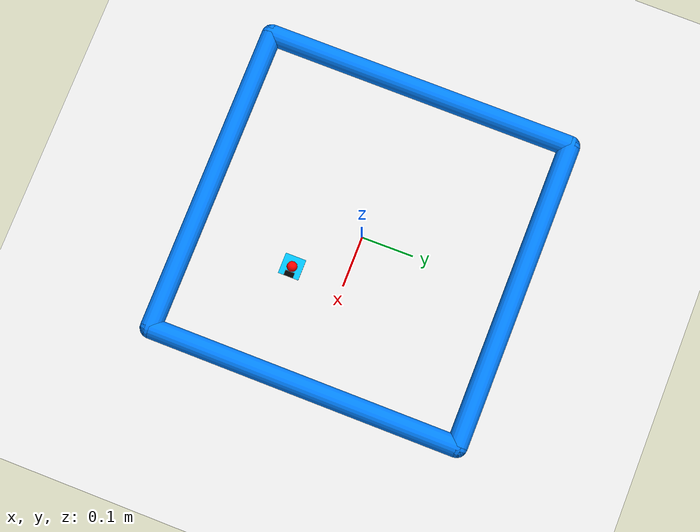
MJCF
<mujoco model="reacher">
	<compiler angle="radian" inertiafromgeom="true"/>
	<default>
		<joint armature="1" damping="1" limited="true"/>
		<geom contype="0" friction="1 0.1 0.1" rgba="0.7 0.7 0 1"/>
	</default>
	<option gravity="0 0 -9.81" integrator="RK4" timestep="0.01"/>
	<worldbody>
		<!-- Arena -->
		<geom conaffinity="0" contype="0" name="ground" pos="0 0 0" rgba="0.9 0.9 0.9 1" size="1 1 10" type="plane"/>
		<geom conaffinity="0" fromto="-.3 -.3 .01 .3 -.3 .01" name="sideS" rgba="0 0.5 1 1" size=".02" type="capsule"/>
		<geom conaffinity="0" fromto=" .3 -.3 .01 .3  .3 .01" name="sideE" rgba="0 0.5 1 1" size=".02" type="capsule"/>
		<geom conaffinity="0" fromto="-.3  .3 .01 .3  .3 .01" name="sideN" rgba="0 0.5 1 1" size=".02" type="capsule"/>
		<geom conaffinity="0" fromto="-.3 -.3 .01 -.3 .3 .01" name="sideW" rgba="0 0.5 1 1" size=".02" type="capsule"/>
		<!-- Agent -->
		<body name="agent" pos=".1 -.1 .01">
			<joint armature="1000" damping="800" axis="1 0 0" limited="true" name="agent_x" pos="0 0 0" range="-.27 .27" ref=".1" type="slide"/>
			<joint armature="1000" damping="800" axis="0 1 0" limited="true" name="agent_y" pos="0 0 0" range="-.27 .27" ref="-.1" type="slide"/>
			<geom conaffinity="0" contype="0" name="agent_body" pos="0 0 0" rgba="0 0.75 1 1" size="0.02 0.02 .0001" type="box"/>
			<joint axis="0 0 1" limited="false" name="viewer" pos="0 0 0" type="hinge"/>
			<body name="agent_eye" pos="0 0 0">
				<geom name="eye" pos="0.015 0 0.0001" rgba="0 0 0 1" size="0.005 0.009 0.0001" type="box"/>
			</body>
		</body>

		<!-- Target -->
		<body name="target" pos=".1 -.1 .01">
			<joint armature="0" damping="0" stiffness="0" axis="1 0 0" limited="true" name="target_x" pos="0 0 0" range="-.27 .27" ref=".1" type="slide"/>
			<joint armature="0" damping="0" stiffness="0" axis="0 1 0" limited="true" name="target_y" pos="0 0 0" range="-.27 .27" ref="-.1" type="slide"/>
			<geom conaffinity="0" contype="0" name="target_body" pos="0 0 0" rgba="1 0 0 1" size=".01" type="sphere"/>
		</body>
	</worldbody>
	<actuator>
		<motor ctrllimited="true" ctrlrange="-1.0 1.0" gear="100.0" joint="agent_x"/>
		<motor ctrllimited="true" ctrlrange="-1.0 1.0" gear="100.0" joint="agent_y"/>
		<motor ctrllimited="true" ctrlrange="0 1.0" gear="200.0" joint="viewer"/>
	</actuator>
</mujoco>
